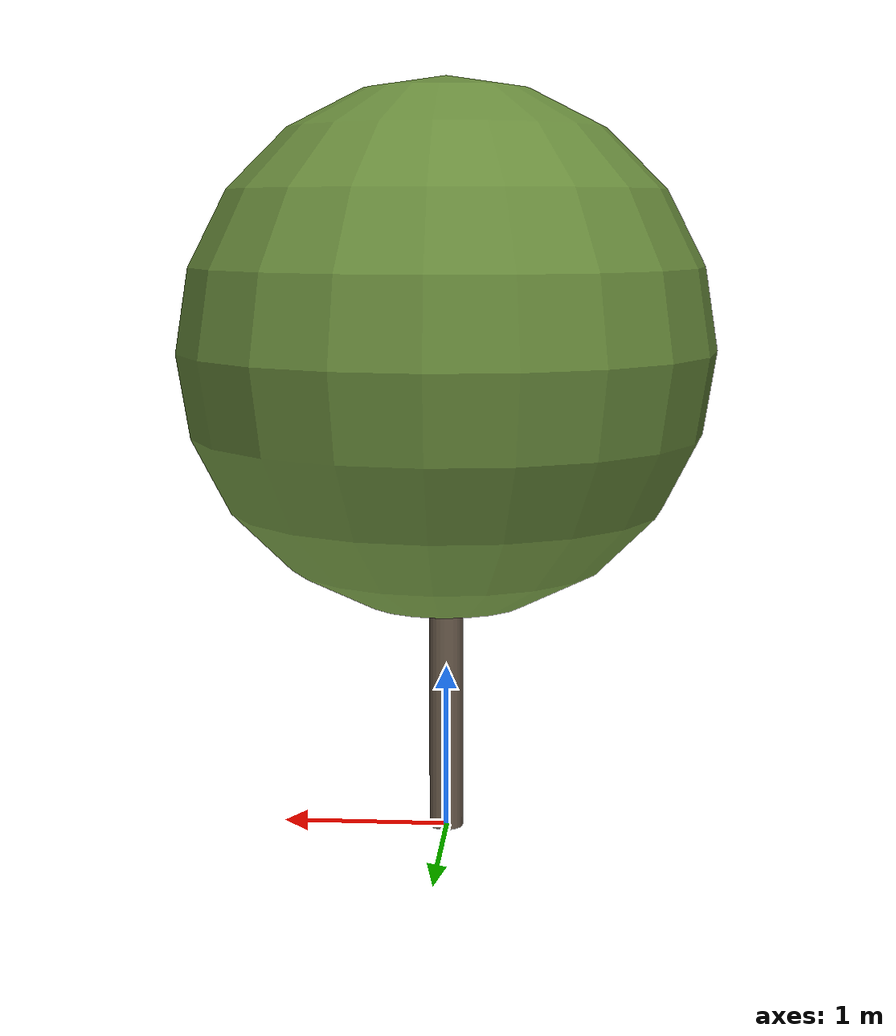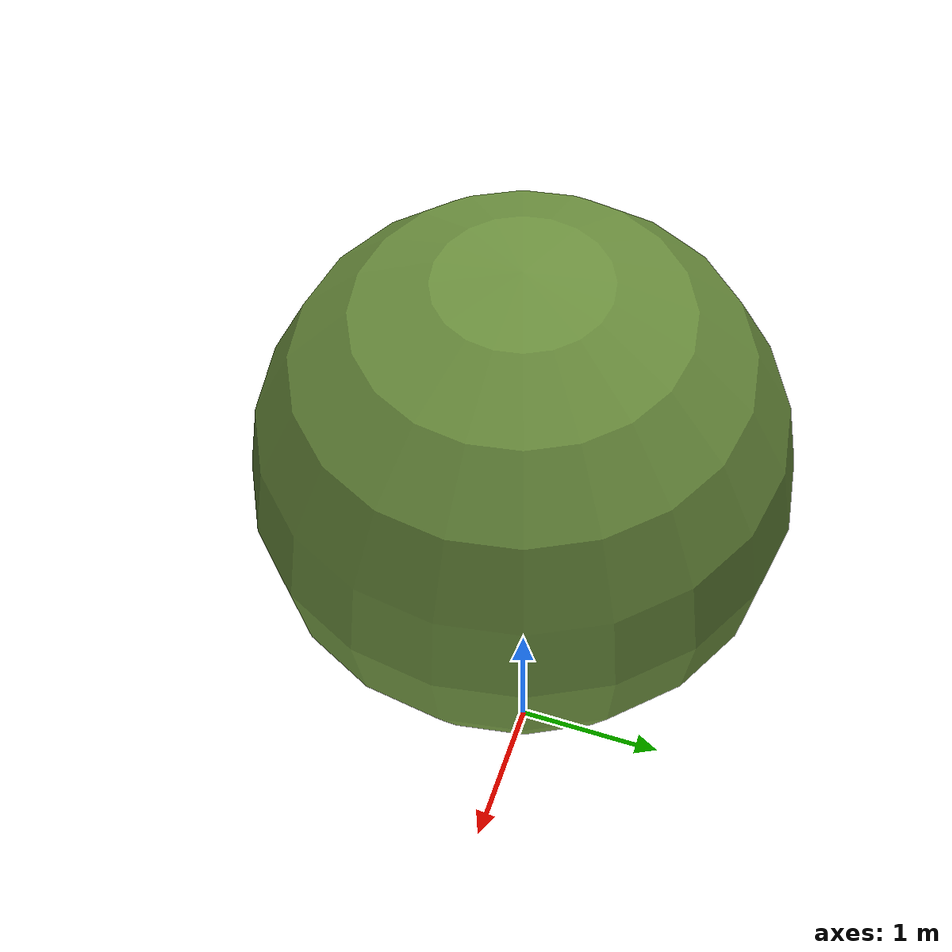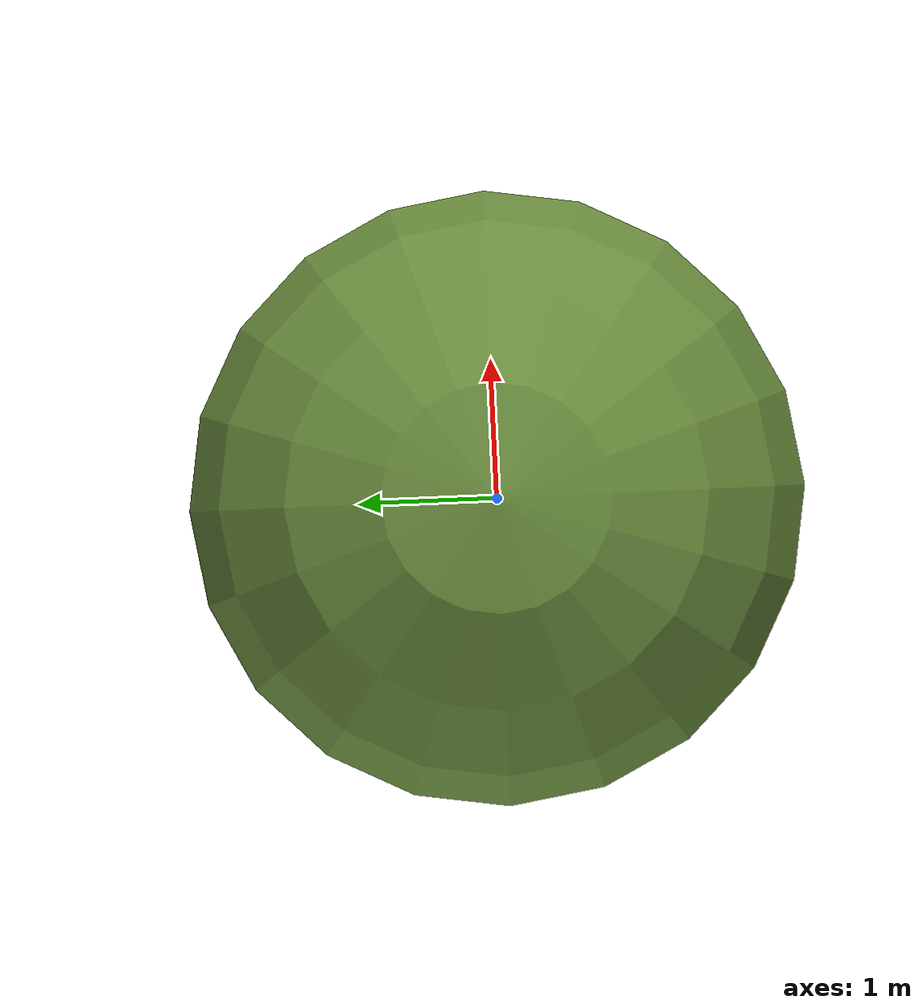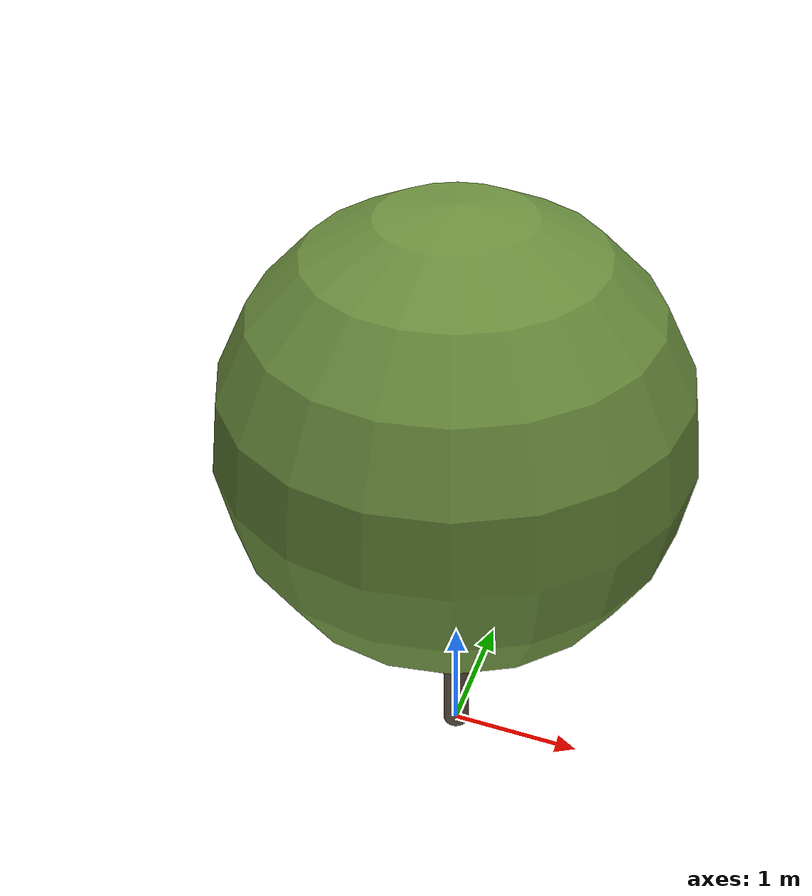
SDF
<?xml version="1.0" ?>
<sdf version="1.10">
  <model name="olivier_provence_07">
    <static>true</static>

    <!-- Tronc -->
    <link name="trunk">
      <pose>0 0 1.227335244917667 0 0 0</pose>
      <visual name="trunk_visual">
        <geometry>
          <cylinder>
            <radius>0.10185278360283159</radius>
            <length>2.454670489835334</length>
          </cylinder>
        </geometry>
        <material>
          <ambient>0.42 0.36 0.30 1</ambient>
          <diffuse>0.42 0.36 0.30 1</diffuse>
          <specular>0.1 0.1 0.1 1</specular>
        </material>
      </visual>
      <collision name="trunk_collision">
        <geometry>
          <cylinder>
            <radius>0.10185278360283159</radius>
            <length>2.454670489835334</length>
          </cylinder>
        </geometry>
      </collision>
    </link>

    <!-- Feuillage -->
    <link name="crown">
      <pose>0 0 2.9332375163403546 0 0 0</pose>
      <visual name="crown_visual">
        <geometry>
          <sphere>
              <radius>1.5952234216834014</radius>
            </sphere>
        </geometry>
        <material>
          <ambient>0.42 0.56 0.24 1</ambient>
          <diffuse>0.42 0.56 0.24 1</diffuse>
          <specular>0.1 0.1 0.1 1</specular>
        </material>
      </visual>
      <collision name="crown_collision">
        <geometry>
          <sphere>
            <radius>1.2761787373467213</radius>
          </sphere>
        </geometry>
      </collision>
    </link>

    <!-- Joint tronc-feuillage -->
    <joint name="trunk_crown_joint" type="fixed">
      <parent>trunk</parent>
      <child>crown</child>
    </joint>

  </model>
</sdf>
